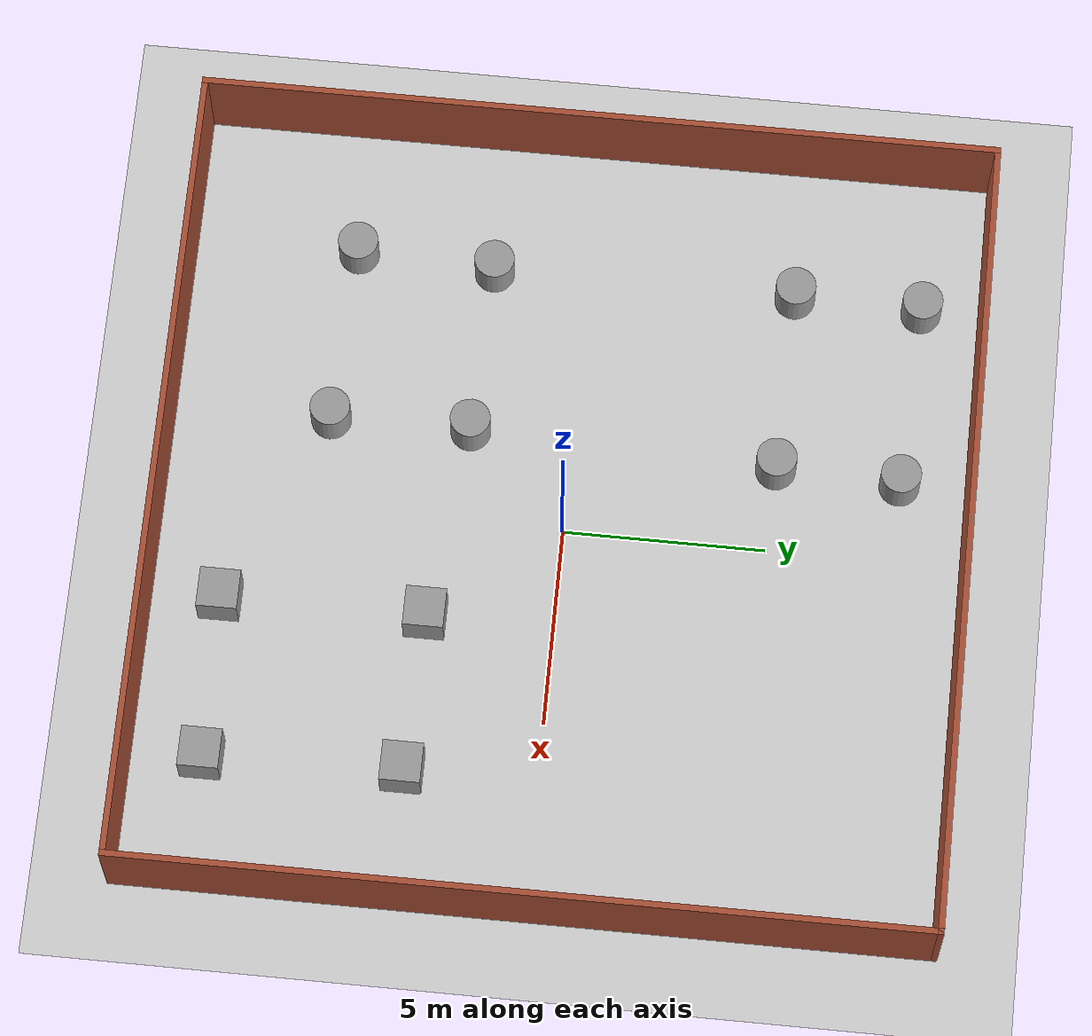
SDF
<sdf version="1.7">
 <world name="default">
  <light name="sun" type="directional">
   <pose>0 0 10 0 -0 0</pose>
   <diffuse>0.8 0.8 0.8 1</diffuse>
   <specular>0.2 0.2 0.2 1</specular>
   <attenuation>
    <range>1000</range>
    <constant>0.9</constant>
    <linear>0.01</linear>
    <quadratic>0.001</quadratic>
   </attenuation>
   <direction>-0.5 0.1 -0.9</direction>
   <spot><inner_angle>0</inner_angle><outer_angle>0</outer_angle><falloff>0</falloff></spot>
  </light>
  <model name="ground_plane">
   <static>1</static>
   <link name="link">
    <collision name="collision">
     <geometry><plane><normal>0 0 1</normal><size>100 100</size></plane></geometry>
     <surface><friction><ode><mu>100</mu><mu2>50</mu2></ode></friction></surface>
    </collision>
    <visual name="visual">
     <cast_shadows>0</cast_shadows>
     <geometry><plane><normal>0 0 1</normal><size>100 100</size></plane></geometry>
     <material>
      <script><uri>file://media/materials/scripts/gazebo.material</uri><name>Gazebo/Grey</name></script>
     </material>
    </visual>
   </link>
  </model>
  <gravity>0 0 -9.8</gravity>
  <magnetic_field>6e-06 2.3e-05 -4.2e-05</magnetic_field>
  <atmosphere type="adiabatic"/>
  <physics type="ode">
   <max_step_size>0.001</max_step_size>
   <real_time_factor>1</real_time_factor>
   <real_time_update_rate>1000</real_time_update_rate>
  </physics>
  <scene><ambient>0.4 0.4 0.4 1</ambient><background>0.7 0.7 0.7 1</background><shadows>1</shadows></scene>
  <spherical_coordinates>
   <surface_model>EARTH_WGS84</surface_model>
   <latitude_deg>0</latitude_deg>
   <longitude_deg>0</longitude_deg>
   <elevation>0</elevation>
   <heading_deg>0</heading_deg>
  </spherical_coordinates>
  <model name="box">
   <pose>-0.133867 -0.048765 0 0 -0 0</pose>
   <link name="Wall_10">
    <collision name="Wall_10_Collision">
     <geometry><box><size>20.25 0.15 2.5</size></box></geometry>
     <pose>0 0 1.25 0 -0 0</pose>
    </collision>
    <visual name="Wall_10_Visual">
     <pose>0 0 1.25 0 -0 0</pose>
     <geometry><box><size>20.25 0.15 2.5</size></box></geometry>
     <material>
      <script><uri>file://media/materials/scripts/gazebo.material</uri><name>Gazebo/Bricks</name></script>
      <ambient>1 1 1 1</ambient>
     </material>
     <meta><layer>0</layer></meta>
    </visual>
    <pose>0 -9.925 0 0 -0 0</pose>
   </link>
   <link name="Wall_11">
    <collision name="Wall_11_Collision">
     <geometry><box><size>20 0.15 2.5</size></box></geometry>
     <pose>0 0 1.25 0 -0 0</pose>
    </collision>
    <visual name="Wall_11_Visual">
     <pose>0 0 1.25 0 -0 0</pose>
     <geometry><box><size>20 0.15 2.5</size></box></geometry>
     <material>
      <script><uri>file://media/materials/scripts/gazebo.material</uri><name>Gazebo/Bricks</name></script>
      <ambient>1 1 1 1</ambient>
     </material>
     <meta><layer>0</layer></meta>
    </visual>
    <pose>10.05 0 0 0 -0 1.5708</pose>
   </link>
   <link name="Wall_12">
    <collision name="Wall_12_Collision">
     <geometry><box><size>20.25 0.15 2.5</size></box></geometry>
     <pose>0 0 1.25 0 -0 0</pose>
    </collision>
    <visual name="Wall_12_Visual">
     <pose>0 0 1.25 0 -0 0</pose>
     <geometry><box><size>20.25 0.15 2.5</size></box></geometry>
     <material>
      <script><uri>file://media/materials/scripts/gazebo.material</uri><name>Gazebo/Bricks</name></script>
      <ambient>1 1 1 1</ambient>
     </material>
     <meta><layer>0</layer></meta>
    </visual>
    <pose>0 9.925 0 0 -0 3.14159</pose>
   </link>
   <link name="Wall_17">
    <collision name="Wall_17_Collision">
     <geometry><box><size>20 0.15 2.5</size></box></geometry>
     <pose>0 0 1.25 0 -0 0</pose>
    </collision>
    <visual name="Wall_17_Visual">
     <pose>0 0 1.25 0 -0 0</pose>
     <geometry><box><size>20 0.15 2.5</size></box></geometry>
     <material>
      <script><uri>file://media/materials/scripts/gazebo.material</uri><name>Gazebo/Bricks</name></script>
      <ambient>1 1 1 1</ambient>
     </material>
     <meta><layer>0</layer></meta>
    </visual>
    <pose>-10.05 0 0 0 -0 -1.5708</pose>
   </link>
   <static>1</static>
  </model>
  <model name="unit_cylinder">
   <pose>-2.38316 -6.02155 0.499998 3e-06 -3e-06 0</pose>
   <link name="link">
    <inertial>
     <mass>1</mass>
     <inertia><ixx>0.145833</ixx><ixy>0</ixy><ixz>0</ixz><iyy>0.145833</iyy><iyz>0</iyz><izz>0.125</izz></inertia>
    </inertial>
    <collision name="collision">
     <geometry><cylinder><radius>0.5</radius><length>1</length></cylinder></geometry>
    </collision>
    <visual name="visual">
     <geometry><cylinder><radius>0.5</radius><length>1</length></cylinder></geometry>
     <material>
      <script><name>Gazebo/Grey</name><uri>file://media/materials/scripts/gazebo.material</uri></script>
     </material>
    </visual>
   </link>
  </model>
  <model name="unit_cylinder_0">
   <pose>-6.86232 -5.81736 0.499992 -3e-06 3e-06 0</pose>
   <link name="link">
    <inertial>
     <mass>1</mass>
     <inertia><ixx>0.145833</ixx><ixy>0</ixy><ixz>0</ixz><iyy>0.145833</iyy><iyz>0</iyz><izz>0.125</izz></inertia>
    </inertial>
    <collision name="collision">
     <geometry><cylinder><radius>0.5</radius><length>1</length></cylinder></geometry>
    </collision>
    <visual name="visual">
     <geometry><cylinder><radius>0.5</radius><length>1</length></cylinder></geometry>
     <material>
      <script><name>Gazebo/Grey</name><uri>file://media/materials/scripts/gazebo.material</uri></script>
     </material>
    </visual>
   </link>
  </model>
  <model name="unit_cylinder_1">
   <pose>-6.69623 5.1921 0.499998 3e-06 -3e-06 0</pose>
   <link name="link">
    <inertial>
     <mass>1</mass>
     <inertia><ixx>0.145833</ixx><ixy>0</ixy><ixz>0</ixz><iyy>0.145833</iyy><iyz>0</iyz><izz>0.125</izz></inertia>
    </inertial>
    <collision name="collision">
     <geometry><cylinder><radius>0.5</radius><length>1</length></cylinder></geometry>
    </collision>
    <visual name="visual">
     <geometry><cylinder><radius>0.5</radius><length>1</length></cylinder></geometry>
     <material>
      <script><name>Gazebo/Grey</name><uri>file://media/materials/scripts/gazebo.material</uri></script>
     </material>
    </visual>
   </link>
  </model>
  <model name="unit_cylinder_2">
   <pose>-2.10807 5.08826 0.499992 -3e-06 3e-06 0</pose>
   <link name="link">
    <inertial>
     <mass>1</mass>
     <inertia><ixx>0.145833</ixx><ixy>0</ixy><ixz>0</ixz><iyy>0.145833</iyy><iyz>0</iyz><izz>0.125</izz></inertia>
    </inertial>
    <collision name="collision">
     <geometry><cylinder><radius>0.5</radius><length>1</length></cylinder></geometry>
    </collision>
    <visual name="visual">
     <geometry><cylinder><radius>0.5</radius><length>1</length></cylinder></geometry>
     <material>
      <script><name>Gazebo/Grey</name><uri>file://media/materials/scripts/gazebo.material</uri></script>
     </material>
    </visual>
   </link>
  </model>
  <model name="unit_cylinder_3">
   <pose>-6.61205 8.36748 0.499998 3e-06 -4e-06 0</pose>
   <link name="link">
    <inertial>
     <mass>1</mass>
     <inertia><ixx>0.145833</ixx><ixy>0</ixy><ixz>0</ixz><iyy>0.145833</iyy><iyz>0</iyz><izz>0.125</izz></inertia>
    </inertial>
    <collision name="collision">
     <geometry><cylinder><radius>0.5</radius><length>1</length></cylinder></geometry>
    </collision>
    <visual name="visual">
     <geometry><cylinder><radius>0.5</radius><length>1</length></cylinder></geometry>
     <material>
      <script><name>Gazebo/Grey</name><uri>file://media/materials/scripts/gazebo.material</uri></script>
     </material>
    </visual>
   </link>
  </model>
  <model name="unit_cylinder_4">
   <pose>-1.97383 8.16876 0.499992 -3e-06 4e-06 0</pose>
   <link name="link">
    <inertial>
     <mass>1</mass>
     <inertia><ixx>0.145833</ixx><ixy>0</ixy><ixz>0</ixz><iyy>0.145833</iyy><iyz>0</iyz><izz>0.125</izz></inertia>
    </inertial>
    <collision name="collision">
     <geometry><cylinder><radius>0.5</radius><length>1</length></cylinder></geometry>
    </collision>
    <visual name="visual">
     <geometry><cylinder><radius>0.5</radius><length>1</length></cylinder></geometry>
     <material>
      <script><name>Gazebo/Grey</name><uri>file://media/materials/scripts/gazebo.material</uri></script>
     </material>
    </visual>
   </link>
  </model>
  <model name="unit_cylinder_5">
   <pose>-2.40255 -2.53836 0.499998 3e-06 -4e-06 0</pose>
   <link name="link">
    <inertial>
     <mass>1</mass>
     <inertia><ixx>0.145833</ixx><ixy>0</ixy><ixz>0</ixz><iyy>0.145833</iyy><iyz>0</iyz><izz>0.125</izz></inertia>
    </inertial>
    <collision name="collision">
     <geometry><cylinder><radius>0.5</radius><length>1</length></cylinder></geometry>
    </collision>
    <visual name="visual">
     <geometry><cylinder><radius>0.5</radius><length>1</length></cylinder></geometry>
     <material>
      <script><name>Gazebo/Grey</name><uri>file://media/materials/scripts/gazebo.material</uri></script>
     </material>
    </visual>
   </link>
  </model>
  <model name="unit_cylinder_6">
   <pose>-6.69807 -2.37236 0.499992 -3e-06 -4e-06 -0</pose>
   <link name="link">
    <inertial>
     <mass>1</mass>
     <inertia><ixx>0.145833</ixx><ixy>0</ixy><ixz>0</ixz><iyy>0.145833</iyy><iyz>0</iyz><izz>0.125</izz></inertia>
    </inertial>
    <collision name="collision">
     <geometry><cylinder><radius>0.5</radius><length>1</length></cylinder></geometry>
    </collision>
    <visual name="visual">
     <geometry><cylinder><radius>0.5</radius><length>1</length></cylinder></geometry>
     <material>
      <script><name>Gazebo/Grey</name><uri>file://media/materials/scripts/gazebo.material</uri></script>
     </material>
    </visual>
   </link>
  </model>
  <model name="unit_box">
   <pose>2.59034 -8.19491 0.499995 -1e-05 -0 -0</pose>
   <link name="link">
    <inertial>
     <mass>1</mass>
     <inertia>
      <ixx>0.166667</ixx>
      <ixy>0</ixy>
      <ixz>0</ixz>
      <iyy>0.166667</iyy>
      <iyz>0</iyz>
      <izz>0.166667</izz>
     </inertia>
    </inertial>
    <collision name="collision"><geometry><box><size>1 1 1</size></box></geometry></collision>
    <visual name="visual">
     <geometry><box><size>1 1 1</size></box></geometry>
     <material>
      <script><name>Gazebo/Grey</name><uri>file://media/materials/scripts/gazebo.material</uri></script>
     </material>
    </visual>
   </link>
  </model>
  <model name="unit_box_0">
   <pose>2.58302 -3.13895 0.499995 0 1e-05 0</pose>
   <link name="link">
    <inertial>
     <mass>1</mass>
     <inertia>
      <ixx>0.166667</ixx>
      <ixy>0</ixy>
      <ixz>0</ixz>
      <iyy>0.166667</iyy>
      <iyz>0</iyz>
      <izz>0.166667</izz>
     </inertia>
    </inertial>
    <collision name="collision"><geometry><box><size>1 1 1</size></box></geometry></collision>
    <visual name="visual">
     <geometry><box><size>1 1 1</size></box></geometry>
     <material>
      <script><name>Gazebo/Grey</name><uri>file://media/materials/scripts/gazebo.material</uri></script>
     </material>
    </visual>
   </link>
  </model>
  <model name="unit_box_1">
   <pose>6.65744 -8.15771 0.499995 -1e-05 -0 0</pose>
   <link name="link">
    <inertial>
     <mass>1</mass>
     <inertia>
      <ixx>0.166667</ixx>
      <ixy>0</ixy>
      <ixz>0</ixz>
      <iyy>0.166667</iyy>
      <iyz>0</iyz>
      <izz>0.166667</izz>
     </inertia>
    </inertial>
    <collision name="collision"><geometry><box><size>1 1 1</size></box></geometry></collision>
    <visual name="visual">
     <geometry><box><size>1 1 1</size></box></geometry>
     <material>
      <script><name>Gazebo/Grey</name><uri>file://media/materials/scripts/gazebo.material</uri></script>
     </material>
    </visual>
   </link>
  </model>
  <model name="unit_box_2">
   <pose>6.544 -3.27968 0.5 0 -0 0</pose>
   <link name="link">
    <inertial>
     <mass>1</mass>
     <inertia>
      <ixx>0.166667</ixx>
      <ixy>0</ixy>
      <ixz>0</ixz>
      <iyy>0.166667</iyy>
      <iyz>0</iyz>
      <izz>0.166667</izz>
     </inertia>
    </inertial>
    <collision name="collision"><geometry><box><size>1 1 1</size></box></geometry></collision>
    <visual name="visual">
     <geometry><box><size>1 1 1</size></box></geometry>
     <material>
      <script><name>Gazebo/Grey</name><uri>file://media/materials/scripts/gazebo.material</uri></script>
     </material>
    </visual>
   </link>
  </model>
 </world>
</sdf>
